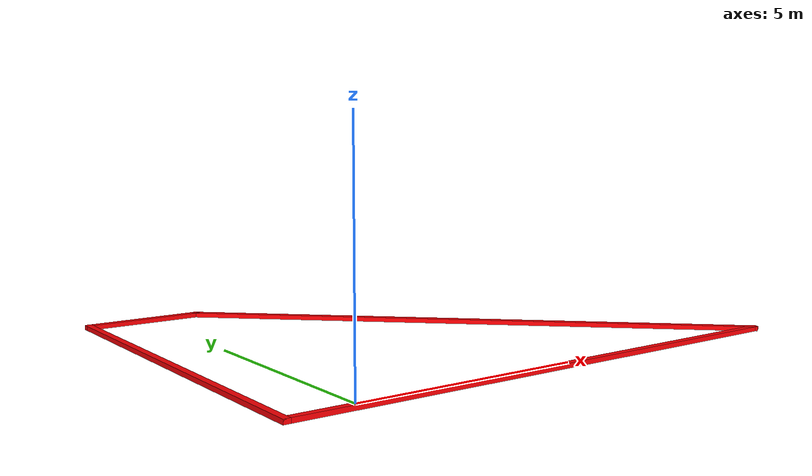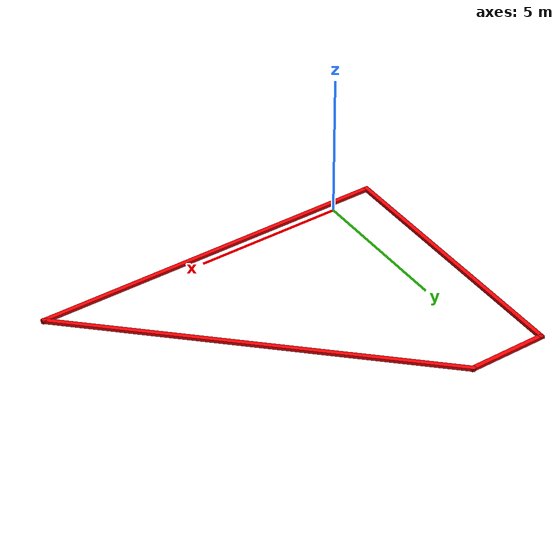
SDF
<?xml version='1.0'?>
<sdf version='1.6'>
  <model name='CompBounds'>
    <pose frame=''>4.50653 4.209 0 0 -0 0</pose>
    <link name='Wall_11'>
      <collision name='Wall_11_Collision'>
        <geometry>
          <box>
            <size>9.144 0.15 0.1</size>
          </box>
        </geometry>
        <pose frame=''>0 0 0.05 0 -0 0</pose>
      </collision>
      <visual name='Wall_11_Visual'>
        <pose frame=''>0 0 0.05 0 -0 0</pose>
        <geometry>
          <box>
            <size>9.144 0.15 0.1</size>
          </box>
        </geometry>
        <material>
          <script>
            <uri>file://media/materials/scripts/gazebo.material</uri>
            <name>Gazebo/Grey</name>
          </script>
          <ambient>1 0 0.0156863 1</ambient>
        </material>
        <meta>
          <layer>0</layer>
        </meta>
      </visual>
      <pose frame=''>-6.03653 0 0 0 0 -1.5708</pose>
    </link>
    <link name='Wall_13'>
      <collision name='Wall_13_Collision'>
        <geometry>
          <box>
            <size>12.192 0.15 0.1</size>
          </box>
        </geometry>
        <pose frame=''>0 0 0.05 0 -0 0</pose>
      </collision>
      <visual name='Wall_13_Visual'>
        <pose frame=''>0 0 0.05 0 -0 0</pose>
        <geometry>
          <box>
            <size>12.192 0.15 0.1</size>
          </box>
        </geometry>
        <material>
          <script>
            <uri>file://media/materials/scripts/gazebo.material</uri>
            <name>Gazebo/Grey</name>
          </script>
          <ambient>1 0 0.0156863 1</ambient>
        </material>
        <meta>
          <layer>0</layer>
        </meta>
      </visual>
      <pose frame=''>-0.015526 -4.497 0 0 -0 0</pose>
    </link>
    <link name='Wall_15'>
      <collision name='Wall_15_Collision'>
        <geometry>
          <box>
            <size>13.1952 0.15 0.1</size>
          </box>
        </geometry>
        <pose frame=''>0 0 0.05 0 -0 0</pose>
      </collision>
      <visual name='Wall_15_Visual'>
        <pose frame=''>0 0 0.05 0 -0 0</pose>
        <geometry>
          <box>
            <size>13.1952 0.15 0.1</size>
          </box>
        </geometry>
        <material>
          <script>
            <uri>file://media/materials/scripts/gazebo.material</uri>
            <name>Gazebo/Grey</name>
          </script>
          <ambient>1 0 0.0156863 1</ambient>
        </material>
        <meta>
          <layer>0</layer>
        </meta>
      </visual>
      <pose frame=''>1.28097 0 0 0 -0 2.38086</pose>
    </link>
    <link name='Wall_9'>
      <collision name='Wall_9_Collision'>
        <geometry>
          <box>
            <size>2.743 0.15 0.1</size>
          </box>
        </geometry>
        <pose frame=''>0 0 0.05 0 -0 0</pose>
      </collision>
      <visual name='Wall_9_Visual'>
        <pose frame=''>0 0 0.05 0 -0 0</pose>
        <geometry>
          <box>
            <size>2.743 0.15 0.1</size>
          </box>
        </geometry>
        <material>
          <script>
            <uri>file://media/materials/scripts/gazebo.material</uri>
            <name>Gazebo/Grey</name>
          </script>
          <ambient>1 0 0.0156863 1</ambient>
        </material>
        <meta>
          <layer>0</layer>
        </meta>
      </visual>
      <pose frame=''>-4.74003 4.497 0 0 -0 0</pose>
    </link>
    <static>1</static>
  </model>
</sdf>
